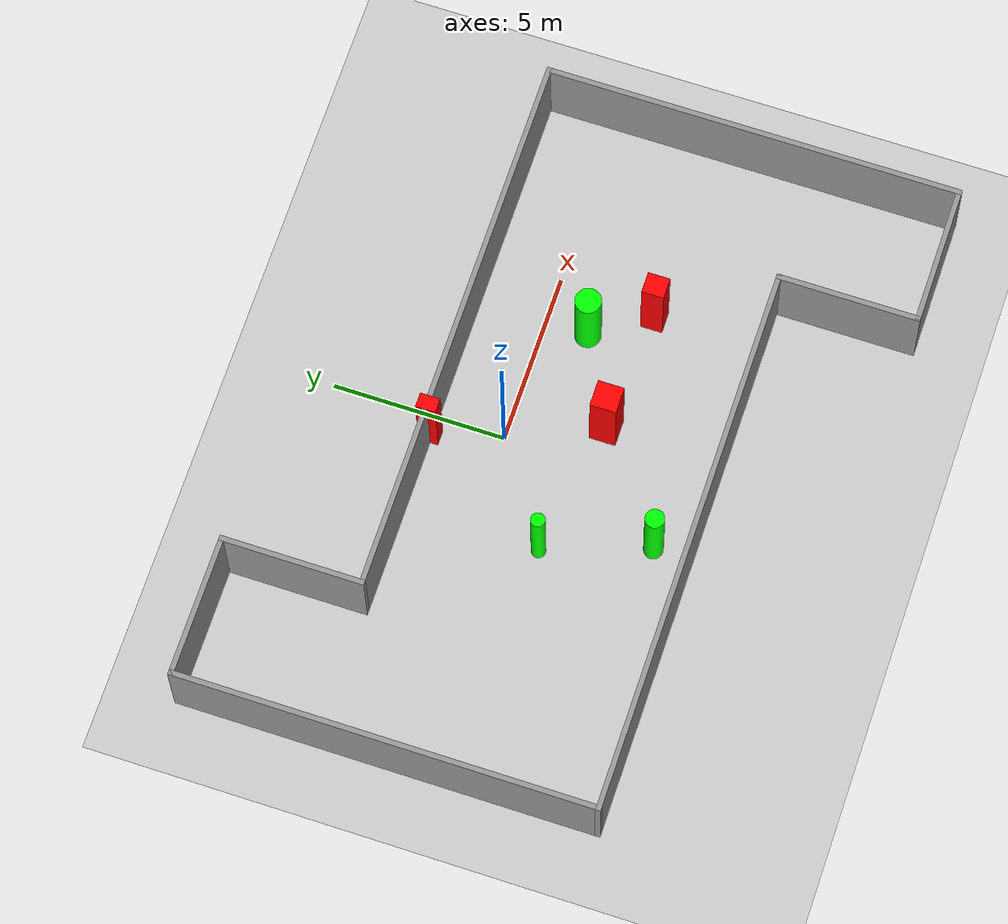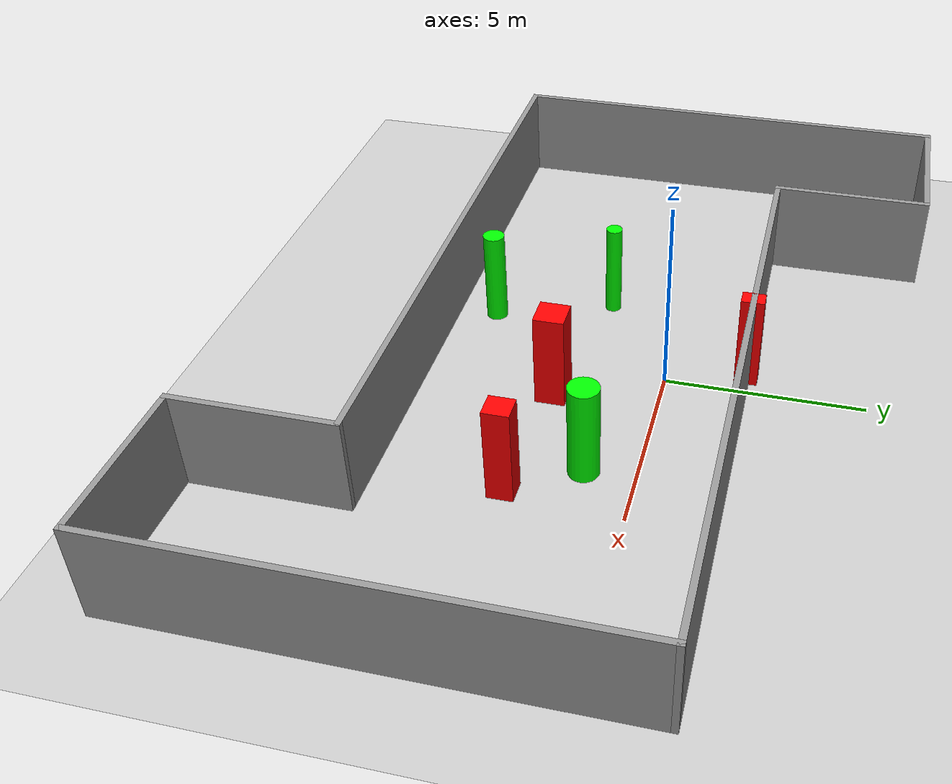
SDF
<sdf version="1.7">
 <world name="default">
  <light name="sun" type="directional">
   <pose>0 0 10 0 -0 0</pose>
   <diffuse>0.8 0.8 0.8 1</diffuse>
   <specular>0.2 0.2 0.2 1</specular>
   <attenuation>
    <range>1000</range>
    <constant>0.9</constant>
    <linear>0.01</linear>
    <quadratic>0.001</quadratic>
   </attenuation>
   <direction>-0.5 0.1 -0.9</direction>
   <spot><inner_angle>0</inner_angle><outer_angle>0</outer_angle><falloff>0</falloff></spot>
  </light>
  <model name="ground_plane">
   <static>1</static>
   <link name="link">
    <collision name="collision">
     <geometry><plane><normal>0 0 1</normal><size>100 100</size></plane></geometry>
     <surface>
      <contact><collide_bitmask>65535</collide_bitmask></contact>
      <friction><ode><mu>100</mu><mu2>50</mu2></ode></friction>
     </surface>
    </collision>
    <visual name="visual">
     <cast_shadows>0</cast_shadows>
     <geometry><plane><normal>0 0 1</normal><size>100 100</size></plane></geometry>
     <material>
      <script><uri>file://media/materials/scripts/gazebo.material</uri><name>Gazebo/Grey</name></script>
     </material>
    </visual>
   </link>
  </model>
  <gravity>0 0 -9.8</gravity>
  <magnetic_field>6e-06 2.3e-05 -4.2e-05</magnetic_field>
  <atmosphere type="adiabatic"/>
  <physics type="ode">
   <max_step_size>0.001</max_step_size>
   <real_time_factor>1</real_time_factor>
   <real_time_update_rate>1000</real_time_update_rate>
  </physics>
  <scene><ambient>0.4 0.4 0.4 1</ambient><background>0.7 0.7 0.7 1</background><shadows>1</shadows></scene>
  <spherical_coordinates>
   <surface_model>EARTH_WGS84</surface_model>
   <latitude_deg>0</latitude_deg>
   <longitude_deg>0</longitude_deg>
   <elevation>0</elevation>
   <heading_deg>0</heading_deg>
  </spherical_coordinates>
  <model name="my_base_walls">
   <link name="Wall_13">
    <collision name="Wall_13_Collision">
     <geometry><box><size>12.15 0.15 2.5</size></box></geometry>
     <pose>0 0 1.25 0 -0 0</pose>
    </collision>
    <visual name="Wall_13_Visual">
     <pose>0 0 1.25 0 -0 0</pose>
     <geometry><box><size>12.15 0.15 2.5</size></box></geometry>
     <material>
      <script><uri>file://media/materials/scripts/gazebo.material</uri><name>Gazebo/Grey</name></script>
      <ambient>1 1 1 1</ambient>
     </material>
     <meta><layer>0</layer></meta>
    </visual>
    <pose>10 -2 0 0 -0 1.5708</pose>
   </link>
   <link name="Wall_15">
    <collision name="Wall_15_Collision">
     <geometry><box><size>16.15 0.15 2.5</size></box></geometry>
     <pose>0 0 1.25 0 -0 0</pose>
    </collision>
    <visual name="Wall_15_Visual">
     <pose>0 0 1.25 0 -0 0</pose>
     <geometry><box><size>16.15 0.15 2.5</size></box></geometry>
     <material>
      <script><uri>file://media/materials/scripts/gazebo.material</uri><name>Gazebo/Grey</name></script>
      <ambient>1 1 1 1</ambient>
     </material>
     <meta><layer>0</layer></meta>
    </visual>
    <pose>2 4 0 0 -0 3.14159</pose>
   </link>
   <link name="Wall_17">
    <collision name="Wall_17_Collision">
     <geometry><box><size>4.15 0.15 2.5</size></box></geometry>
     <pose>0 0 1.25 0 -0 0</pose>
    </collision>
    <visual name="Wall_17_Visual">
     <pose>0 0 1.25 0 -0 0</pose>
     <geometry><box><size>4.15 0.15 2.5</size></box></geometry>
     <material>
      <script><uri>file://media/materials/scripts/gazebo.material</uri><name>Gazebo/Grey</name></script>
      <ambient>1 1 1 1</ambient>
     </material>
     <meta><layer>0</layer></meta>
    </visual>
    <pose>6 -6 0 0 -0 -1.5708</pose>
   </link>
   <link name="Wall_19">
    <collision name="Wall_19_Collision">
     <geometry><box><size>12.15 0.15 2.5</size></box></geometry>
     <pose>0 0 1.25 0 -0 0</pose>
    </collision>
    <visual name="Wall_19_Visual">
     <pose>0 0 1.25 0 -0 0</pose>
     <geometry><box><size>12.15 0.15 2.5</size></box></geometry>
     <material>
      <script><uri>file://media/materials/scripts/gazebo.material</uri><name>Gazebo/Grey</name></script>
      <ambient>1 1 1 1</ambient>
     </material>
     <meta><layer>0</layer></meta>
    </visual>
    <pose>-10 2 0 0 -0 1.5708</pose>
   </link>
   <link name="Wall_21">
    <collision name="Wall_21_Collision">
     <geometry><box><size>4.15 0.15 2.5</size></box></geometry>
     <pose>0 0 1.25 0 -0 0</pose>
    </collision>
    <visual name="Wall_21_Visual">
     <pose>0 0 1.25 0 -0 0</pose>
     <geometry><box><size>4.15 0.15 2.5</size></box></geometry>
     <material>
      <script><uri>file://media/materials/scripts/gazebo.material</uri><name>Gazebo/Grey</name></script>
      <ambient>1 1 1 1</ambient>
     </material>
     <meta><layer>0</layer></meta>
    </visual>
    <pose>-8 8 0 0 -0 0</pose>
   </link>
   <link name="Wall_23">
    <collision name="Wall_23_Collision">
     <geometry><box><size>4.15 0.15 2.5</size></box></geometry>
     <pose>0 0 1.25 0 -0 0</pose>
    </collision>
    <visual name="Wall_23_Visual">
     <pose>0 0 1.25 0 -0 0</pose>
     <geometry><box><size>4.15 0.15 2.5</size></box></geometry>
     <material>
      <script><uri>file://media/materials/scripts/gazebo.material</uri><name>Gazebo/Grey</name></script>
      <ambient>1 1 1 1</ambient>
     </material>
     <meta><layer>0</layer></meta>
    </visual>
    <pose>-6 6 0 0 -0 -1.5708</pose>
   </link>
   <link name="Wall_25">
    <collision name="Wall_25_Collision">
     <geometry><box><size>4.15 0.15 2.5</size></box></geometry>
     <pose>0 0 1.25 0 -0 0</pose>
    </collision>
    <visual name="Wall_25_Visual">
     <pose>0 0 1.25 0 -0 0</pose>
     <geometry><box><size>4.15 0.15 2.5</size></box></geometry>
     <material>
      <script><uri>file://media/materials/scripts/gazebo.material</uri><name>Gazebo/Grey</name></script>
      <ambient>1 1 1 1</ambient>
     </material>
     <meta><layer>0</layer></meta>
    </visual>
    <pose>8 -8 0 0 -0 0</pose>
   </link>
   <link name="Wall_9">
    <collision name="Wall_9_Collision">
     <geometry><box><size>16.15 0.15 2.5</size></box></geometry>
     <pose>0 0 1.25 0 -0 0</pose>
    </collision>
    <visual name="Wall_9_Visual">
     <pose>0 0 1.25 0 -0 0</pose>
     <geometry><box><size>16.15 0.15 2.5</size></box></geometry>
     <material>
      <script><uri>file://media/materials/scripts/gazebo.material</uri><name>Gazebo/Grey</name></script>
      <ambient>1 1 1 1</ambient>
     </material>
     <meta><layer>0</layer></meta>
    </visual>
    <pose>-2 -4 0 0 -0 3.14159</pose>
   </link>
   <static>1</static>
   <pose>-0 -2 0 0 -0 0</pose>
  </model>
  <model name="cylinder1">
   <static>1</static>
   <link name="link">
    <inertial>
     <mass>1</mass>
     <inertia><ixx>0.5</ixx><ixy>0</ixy><ixz>0</ixz><iyy>0.5</iyy><iyz>0</iyz><izz>1</izz></inertia>
    </inertial>
    <collision name="collision">
     <geometry><cylinder><radius>0.2080764860596323</radius><length>2.5</length></cylinder></geometry>
    </collision>
    <visual name="visual">
     <geometry><cylinder><radius>0.2080764860596323</radius><length>2.5</length></cylinder></geometry>
     <material>
      <ambient>0 1 0 1</ambient>
      <diffuse>0 1 0 1</diffuse>
      <specular>0.1 0.1 0.1 1</specular>
      <emissive>0 0 0 0</emissive>
     </material>
    </visual>
   </link>
   <pose>-2.84071550405187 -1.934617328047855 1.25 0 0 0</pose>
  </model>
  <model name="cylinder2">
   <static>1</static>
   <link name="link">
    <inertial>
     <mass>1</mass>
     <inertia><ixx>0.5</ixx><ixy>0</ixy><ixz>0</ixz><iyy>0.5</iyy><iyz>0</iyz><izz>1</izz></inertia>
    </inertial>
    <collision name="collision">
     <geometry><cylinder><radius>0.2774228774536861</radius><length>2.5</length></cylinder></geometry>
    </collision>
    <visual name="visual">
     <geometry><cylinder><radius>0.2774228774536861</radius><length>2.5</length></cylinder></geometry>
     <material>
      <ambient>0 1 0 1</ambient>
      <diffuse>0 1 0 1</diffuse>
      <specular>0.1 0.1 0.1 1</specular>
      <emissive>0 0 0 0</emissive>
     </material>
    </visual>
   </link>
   <pose>-1.8218220819134743 -4.924002326501622 1.25 0 0 0</pose>
  </model>
  <model name="cylinder3">
   <static>1</static>
   <link name="link">
    <inertial>
     <mass>1</mass>
     <inertia><ixx>0.5</ixx><ixy>0</ixy><ixz>0</ixz><iyy>0.5</iyy><iyz>0</iyz><izz>1</izz></inertia>
    </inertial>
    <collision name="collision">
     <geometry><cylinder><radius>0.37902802826611826</radius><length>2.5</length></cylinder></geometry>
    </collision>
    <visual name="visual">
     <geometry><cylinder><radius>0.37902802826611826</radius><length>2.5</length></cylinder></geometry>
     <material>
      <ambient>0 1 0 1</ambient>
      <diffuse>0 1 0 1</diffuse>
      <specular>0.1 0.1 0.1 1</specular>
      <emissive>0 0 0 0</emissive>
     </material>
    </visual>
   </link>
   <pose>3.6723631926150233 -1.2318735607402607 1.25 0 0 0</pose>
  </model>
  <model name="box1">
   <static>1</static>
   <link name="link">
    <inertial>
     <mass>1</mass>
     <inertia><ixx>0.083</ixx><ixy>0</ixy><ixz>0</ixz><iyy>0.083</iyy><iyz>0</iyz><izz>0.083</izz></inertia>
    </inertial>
    <collision name="collision">
     <geometry><box><size>0.762233809437032 0.7561729013661569 2.5</size></box></geometry>
    </collision>
    <visual name="visual">
     <geometry><box><size>0.762233809437032 0.7561729013661569 2.5</size></box></geometry>
     <material>
      <ambient>1 0 0 1</ambient>
      <diffuse>1 0 0 1</diffuse>
      <specular>0.1 0.1 0.1 1</specular>
      <emissive>0 0 0 0</emissive>
     </material>
    </visual>
    <sensor name="my_contact" type="contact">
     <contact><collision>box_collision</collision><topic>__default_topic__</topic></contact>
    </sensor>
   </link>
   <pose>1.140577199048403 -2.6031415078992666 1.25 0 0 0</pose>
  </model>
  <model name="box2">
   <static>1</static>
   <link name="link">
    <inertial>
     <mass>1</mass>
     <inertia><ixx>0.083</ixx><ixy>0</ixy><ixz>0</ixz><iyy>0.083</iyy><iyz>0</iyz><izz>0.083</izz></inertia>
    </inertial>
    <collision name="collision">
     <geometry><box><size>0.4171350031522111 0.5782738767151315 2.5</size></box></geometry>
    </collision>
    <visual name="visual">
     <geometry><box><size>0.4171350031522111 0.5782738767151315 2.5</size></box></geometry>
     <material>
      <ambient>1 0 0 1</ambient>
      <diffuse>1 0 0 1</diffuse>
      <specular>0.1 0.1 0.1 1</specular>
      <emissive>0 0 0 0</emissive>
     </material>
    </visual>
    <sensor name="my_contact" type="contact">
     <contact><collision>box_collision</collision><topic>__default_topic__</topic></contact>
    </sensor>
   </link>
   <pose>-0.550561657679955 1.9851615049549105 1.25 0 0 0</pose>
  </model>
  <model name="box3">
   <static>1</static>
   <link name="link">
    <inertial>
     <mass>1</mass>
     <inertia><ixx>0.083</ixx><ixy>0</ixy><ixz>0</ixz><iyy>0.083</iyy><iyz>0</iyz><izz>0.083</izz></inertia>
    </inertial>
    <collision name="collision">
     <geometry><box><size>0.6074307781940094 0.639185305910939 2.5</size></box></geometry>
    </collision>
    <visual name="visual">
     <geometry><box><size>0.6074307781940094 0.639185305910939 2.5</size></box></geometry>
     <material>
      <ambient>1 0 0 1</ambient>
      <diffuse>1 0 0 1</diffuse>
      <specular>0.1 0.1 0.1 1</specular>
      <emissive>0 0 0 0</emissive>
     </material>
    </visual>
    <sensor name="my_contact" type="contact">
     <contact><collision>box_collision</collision><topic>__default_topic__</topic></contact>
    </sensor>
   </link>
   <pose>4.6914051776487025 -2.8606810808176757 1.25 0 0 0</pose>
  </model>
 </world>
</sdf>
